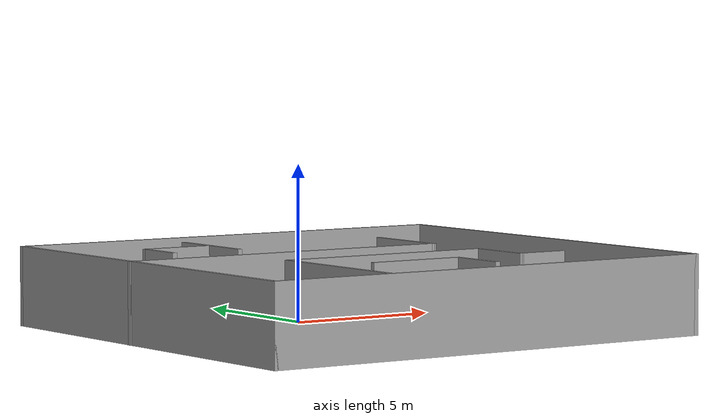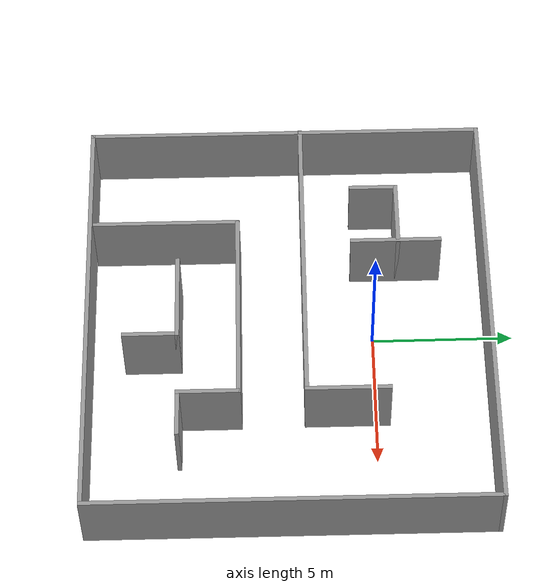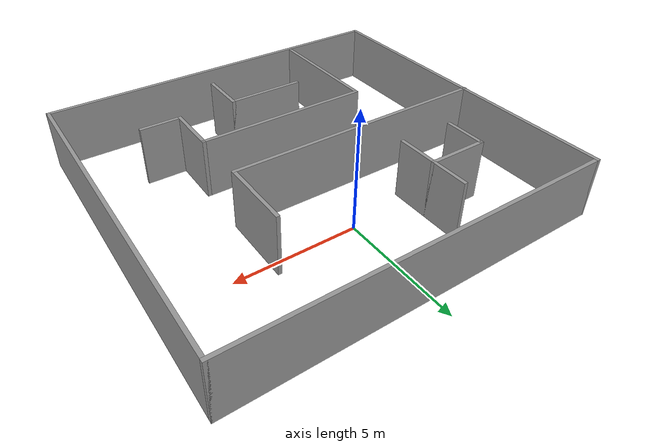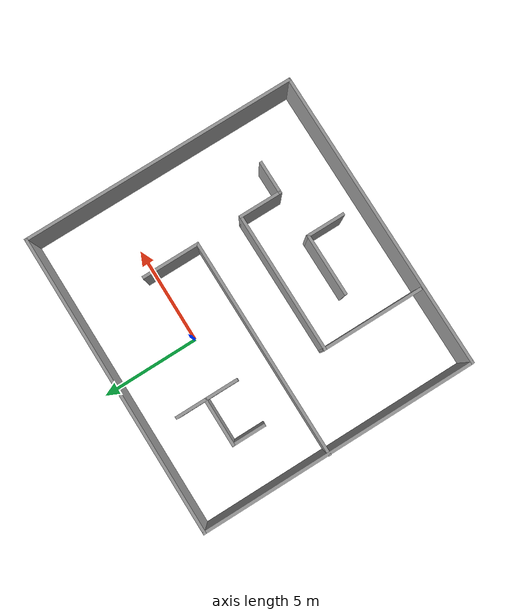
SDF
<?xml version='1.0'?>
<sdf version='1.7'>
  <model name='walls'>
    <pose>0.056939 -2.98927 0 0 -0 0</pose>
    <link name='Wall_100'>
      <collision name='Wall_100_Collision'>
        <geometry>
          <box>
            <size>1.75 0.15 2.5</size>
          </box>
        </geometry>
        <pose>0 0 1.25 0 -0 0</pose>
      </collision>
      <visual name='Wall_100_Visual'>
        <pose>0 0 1.25 0 -0 0</pose>
        <geometry>
          <box>
            <size>1.75 0.15 2.5</size>
          </box>
        </geometry>
        <material>
          <script>
            <uri>file://media/materials/scripts/gazebo.material</uri>
            <name>Gazebo/Grey</name>
          </script>
          <ambient>1 1 1 1</ambient>
        </material>
        <meta>
          <layer>0</layer>
        </meta>
      </visual>
      <pose>-5.08634 3.15554 0 0 -0 -1.5708</pose>
    </link>
    <link name='Wall_102'>
      <collision name='Wall_102_Collision'>
        <geometry>
          <box>
            <size>3.25 0.15 2.5</size>
          </box>
        </geometry>
        <pose>0 0 1.25 0 -0 0</pose>
      </collision>
      <visual name='Wall_102_Visual'>
        <pose>0 0 1.25 0 -0 0</pose>
        <geometry>
          <box>
            <size>3.25 0.15 2.5</size>
          </box>
        </geometry>
        <material>
          <script>
            <uri>file://media/materials/scripts/gazebo.material</uri>
            <name>Gazebo/Grey</name>
          </script>
          <ambient>1 1 1 1</ambient>
        </material>
        <meta>
          <layer>0</layer>
        </meta>
      </visual>
      <pose>-0.478768 -3.8985 0 0 -0 0</pose>
    </link>
    <link name='Wall_103'>
      <collision name='Wall_103_Collision'>
        <geometry>
          <box>
            <size>2 0.15 2.5</size>
          </box>
        </geometry>
        <pose>0 0 1.25 0 -0 0</pose>
      </collision>
      <visual name='Wall_103_Visual'>
        <pose>0 0 1.25 0 -0 0</pose>
        <geometry>
          <box>
            <size>2 0.15 2.5</size>
          </box>
        </geometry>
        <material>
          <script>
            <uri>file://media/materials/scripts/gazebo.material</uri>
            <name>Gazebo/Grey</name>
          </script>
          <ambient>1 1 1 1</ambient>
        </material>
        <meta>
          <layer>0</layer>
        </meta>
      </visual>
      <pose>1.07123 -4.8235 0 0 -0 -1.5708</pose>
    </link>
    <link name='Wall_69'>
      <collision name='Wall_69_Collision'>
        <geometry>
          <box>
            <size>15.5 0.15 2.5</size>
          </box>
        </geometry>
        <pose>0 0 1.25 0 -0 0</pose>
      </collision>
      <visual name='Wall_69_Visual'>
        <pose>0 0 1.25 0 -0 0</pose>
        <geometry>
          <box>
            <size>15.5 0.15 2.5</size>
          </box>
        </geometry>
        <material>
          <script>
            <uri>file://media/materials/scripts/gazebo.material</uri>
            <name>Gazebo/Grey</name>
          </script>
          <ambient>1 1 1 1</ambient>
        </material>
        <meta>
          <layer>0</layer>
        </meta>
      </visual>
      <pose>0.014332 7.05 0 0 -0 0</pose>
    </link>
    <link name='Wall_73'>
      <collision name='Wall_73_Collision'>
        <geometry>
          <box>
            <size>14.25 0.15 2.5</size>
          </box>
        </geometry>
        <pose>0 0 1.25 0 -0 0</pose>
      </collision>
      <visual name='Wall_73_Visual'>
        <pose>0 0 1.25 0 -0 0</pose>
        <geometry>
          <box>
            <size>14.25 0.15 2.5</size>
          </box>
        </geometry>
        <material>
          <script>
            <uri>file://media/materials/scripts/gazebo.material</uri>
            <name>Gazebo/Grey</name>
          </script>
          <ambient>1 1 1 1</ambient>
        </material>
        <meta>
          <layer>0</layer>
        </meta>
      </visual>
      <pose>-7.66067 0 0 0 -0 -1.5708</pose>
    </link>
    <link name='Wall_74'>
      <collision name='Wall_74_Collision'>
        <geometry>
          <box>
            <size>15.5 0.15 2.5</size>
          </box>
        </geometry>
        <pose>0 0 1.25 0 -0 0</pose>
      </collision>
      <visual name='Wall_74_Visual'>
        <pose>0 0 1.25 0 -0 0</pose>
        <geometry>
          <box>
            <size>15.5 0.15 2.5</size>
          </box>
        </geometry>
        <material>
          <script>
            <uri>file://media/materials/scripts/gazebo.material</uri>
            <name>Gazebo/Grey</name>
          </script>
          <ambient>1 1 1 1</ambient>
        </material>
        <meta>
          <layer>0</layer>
        </meta>
      </visual>
      <pose>0.014332 -7.05 0 0 -0 0</pose>
    </link>
    <link name='Wall_75'>
      <collision name='Wall_75_Collision'>
        <geometry>
          <box>
            <size>14.25 0.15 2.5</size>
          </box>
        </geometry>
        <pose>0 0 1.25 0 -0 0</pose>
      </collision>
      <visual name='Wall_75_Visual'>
        <pose>0 0 1.25 0 -0 0</pose>
        <geometry>
          <box>
            <size>14.25 0.15 2.5</size>
          </box>
        </geometry>
        <material>
          <script>
            <uri>file://media/materials/scripts/gazebo.material</uri>
            <name>Gazebo/Grey</name>
          </script>
          <ambient>1 1 1 1</ambient>
        </material>
        <meta>
          <layer>0</layer>
        </meta>
      </visual>
      <pose>7.68933 0 0 0 -0 1.5708</pose>
    </link>
    <link name='Wall_88'>
      <collision name='Wall_88_Collision'>
        <geometry>
          <box>
            <size>11.25 0.15 2.5</size>
          </box>
        </geometry>
        <pose>0 0 1.25 0 -0 0</pose>
      </collision>
      <visual name='Wall_88_Visual'>
        <pose>0 0 1.25 0 -0 0</pose>
        <geometry>
          <box>
            <size>11.25 0.15 2.5</size>
          </box>
        </geometry>
        <material>
          <script>
            <uri>file://media/materials/scripts/gazebo.material</uri>
            <name>Gazebo/Grey</name>
          </script>
          <ambient>1 1 1 1</ambient>
        </material>
        <meta>
          <layer>0</layer>
        </meta>
      </visual>
      <pose>-2.13933 0.559198 0 0 -0 0</pose>
    </link>
    <link name='Wall_89'>
      <collision name='Wall_89_Collision'>
        <geometry>
          <box>
            <size>3 0.15 2.5</size>
          </box>
        </geometry>
        <pose>0 0 1.25 0 -0 0</pose>
      </collision>
      <visual name='Wall_89_Visual'>
        <pose>0 0 1.25 0 -0 0</pose>
        <geometry>
          <box>
            <size>3 0.15 2.5</size>
          </box>
        </geometry>
        <material>
          <script>
            <uri>file://media/materials/scripts/gazebo.material</uri>
            <name>Gazebo/Grey</name>
          </script>
          <ambient>1 1 1 1</ambient>
        </material>
        <meta>
          <layer>0</layer>
        </meta>
      </visual>
      <pose>3.41067 1.9842 0 0 -0 1.5708</pose>
    </link>
    <link name='Wall_91'>
      <collision name='Wall_91_Collision'>
        <geometry>
          <box>
            <size>5.25 0.15 2.5</size>
          </box>
        </geometry>
        <pose>0 0 1.25 0 -0 0</pose>
      </collision>
      <visual name='Wall_91_Visual'>
        <pose>0 0 1.25 0 -0 0</pose>
        <geometry>
          <box>
            <size>5.25 0.15 2.5</size>
          </box>
        </geometry>
        <material>
          <script>
            <uri>file://media/materials/scripts/gazebo.material</uri>
            <name>Gazebo/Grey</name>
          </script>
          <ambient>1 1 1 1</ambient>
        </material>
        <meta>
          <layer>0</layer>
        </meta>
      </visual>
      <pose>-3.65618 -4.32029 0 0 -0 1.5708</pose>
    </link>
    <link name='Wall_92'>
      <collision name='Wall_92_Collision'>
        <geometry>
          <box>
            <size>7.25 0.15 2.5</size>
          </box>
        </geometry>
        <pose>0 0 1.25 0 -0 0</pose>
      </collision>
      <visual name='Wall_92_Visual'>
        <pose>0 0 1.25 0 -0 0</pose>
        <geometry>
          <box>
            <size>7.25 0.15 2.5</size>
          </box>
        </geometry>
        <material>
          <script>
            <uri>file://media/materials/scripts/gazebo.material</uri>
            <name>Gazebo/Grey</name>
          </script>
          <ambient>1 1 1 1</ambient>
        </material>
        <meta>
          <layer>0</layer>
        </meta>
      </visual>
      <pose>-0.10618 -1.77029 0 0 -0 0</pose>
    </link>
    <link name='Wall_93'>
      <collision name='Wall_93_Collision'>
        <geometry>
          <box>
            <size>2.25 0.15 2.5</size>
          </box>
        </geometry>
        <pose>0 0 1.25 0 -0 0</pose>
      </collision>
      <visual name='Wall_93_Visual'>
        <pose>0 0 1.25 0 -0 0</pose>
        <geometry>
          <box>
            <size>2.25 0.15 2.5</size>
          </box>
        </geometry>
        <material>
          <script>
            <uri>file://media/materials/scripts/gazebo.material</uri>
            <name>Gazebo/Grey</name>
          </script>
          <ambient>1 1 1 1</ambient>
        </material>
        <meta>
          <layer>0</layer>
        </meta>
      </visual>
      <pose>3.44382 -2.82029 0 0 -0 -1.5708</pose>
    </link>
    <link name='Wall_94'>
      <collision name='Wall_94_Collision'>
        <geometry>
          <box>
            <size>1.75 0.15 2.5</size>
          </box>
        </geometry>
        <pose>0 0 1.25 0 -0 0</pose>
      </collision>
      <visual name='Wall_94_Visual'>
        <pose>0 0 1.25 0 -0 0</pose>
        <geometry>
          <box>
            <size>1.75 0.15 2.5</size>
          </box>
        </geometry>
        <material>
          <script>
            <uri>file://media/materials/scripts/gazebo.material</uri>
            <name>Gazebo/Grey</name>
          </script>
          <ambient>1 1 1 1</ambient>
        </material>
        <meta>
          <layer>0</layer>
        </meta>
      </visual>
      <pose>4.24382 -3.87029 0 0 -0 0</pose>
    </link>
    <link name='Wall_97'>
      <collision name='Wall_97_Collision'>
        <geometry>
          <box>
            <size>3.25 0.15 2.5</size>
          </box>
        </geometry>
        <pose>0 0 1.25 0 -0 0</pose>
      </collision>
      <visual name='Wall_97_Visual'>
        <pose>0 0 1.25 0 -0 0</pose>
        <geometry>
          <box>
            <size>3.25 0.15 2.5</size>
          </box>
        </geometry>
        <material>
          <script>
            <uri>file://media/materials/scripts/gazebo.material</uri>
            <name>Gazebo/Grey</name>
          </script>
          <ambient>1 1 1 1</ambient>
        </material>
        <meta>
          <layer>0</layer>
        </meta>
      </visual>
      <pose>-2.73634 3.87812 0 0 -0 1.5708</pose>
    </link>
    <link name='Wall_99'>
      <collision name='Wall_99_Collision'>
        <geometry>
          <box>
            <size>2.5 0.15 2.5</size>
          </box>
        </geometry>
        <pose>0 0 1.25 0 -0 0</pose>
      </collision>
      <visual name='Wall_99_Visual'>
        <pose>0 0 1.25 0 -0 0</pose>
        <geometry>
          <box>
            <size>2.5 0.15 2.5</size>
          </box>
        </geometry>
        <material>
          <script>
            <uri>file://media/materials/scripts/gazebo.material</uri>
            <name>Gazebo/Grey</name>
          </script>
          <ambient>1 1 1 1</ambient>
        </material>
        <meta>
          <layer>0</layer>
        </meta>
      </visual>
      <pose>-3.91134 3.95554 0 0 -0 3.14159</pose>
    </link>
    <static>1</static>
  </model>
</sdf>
